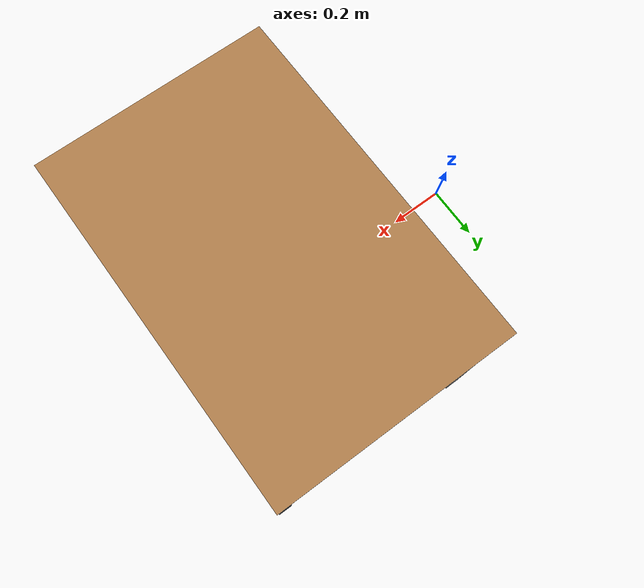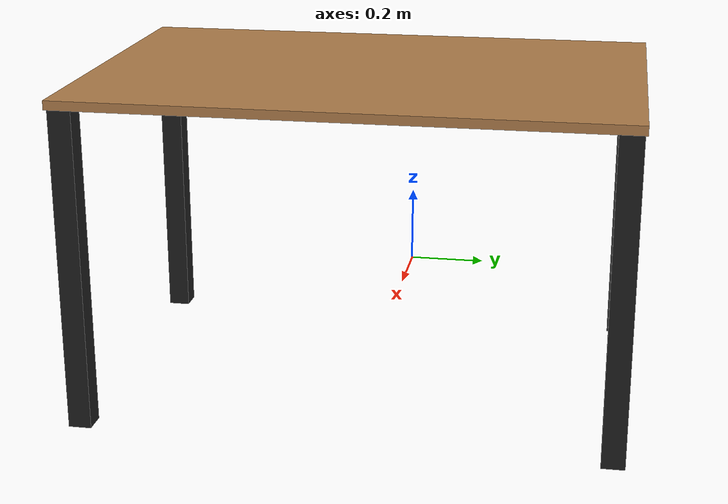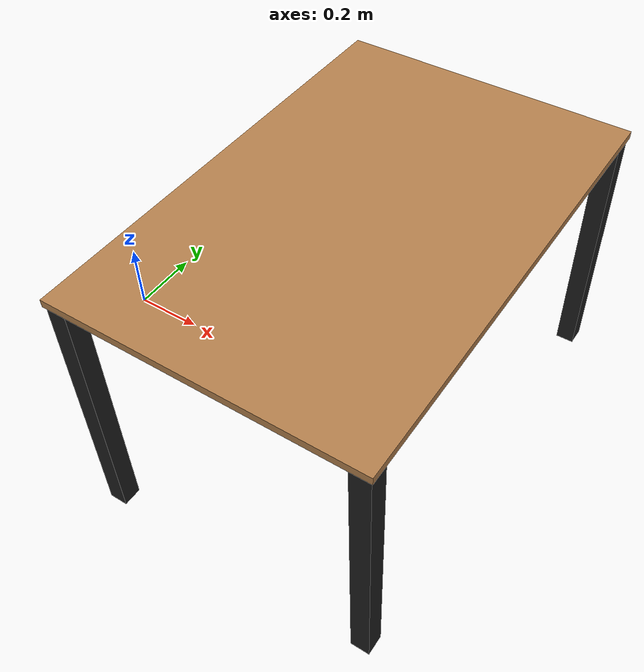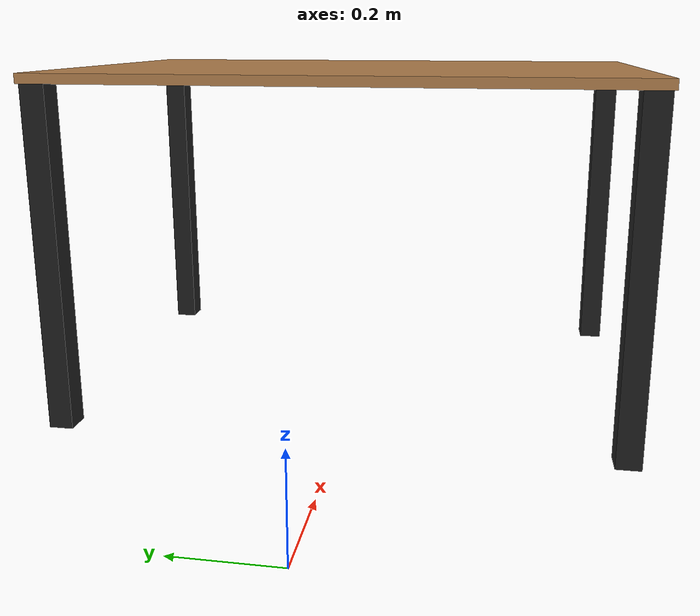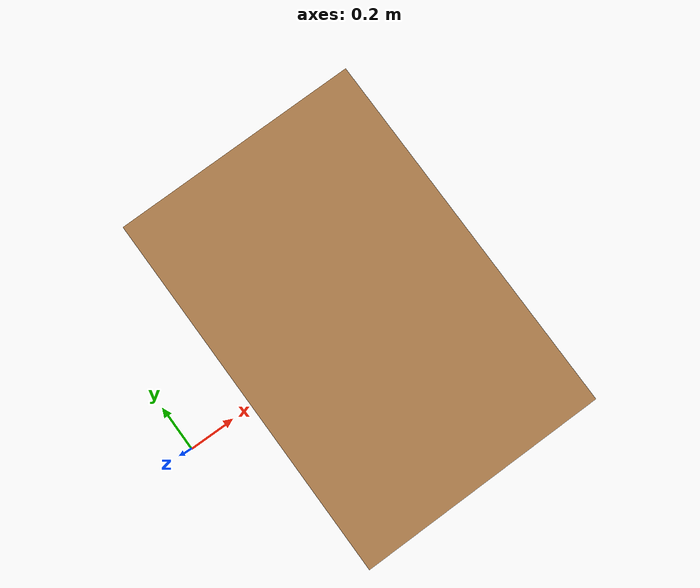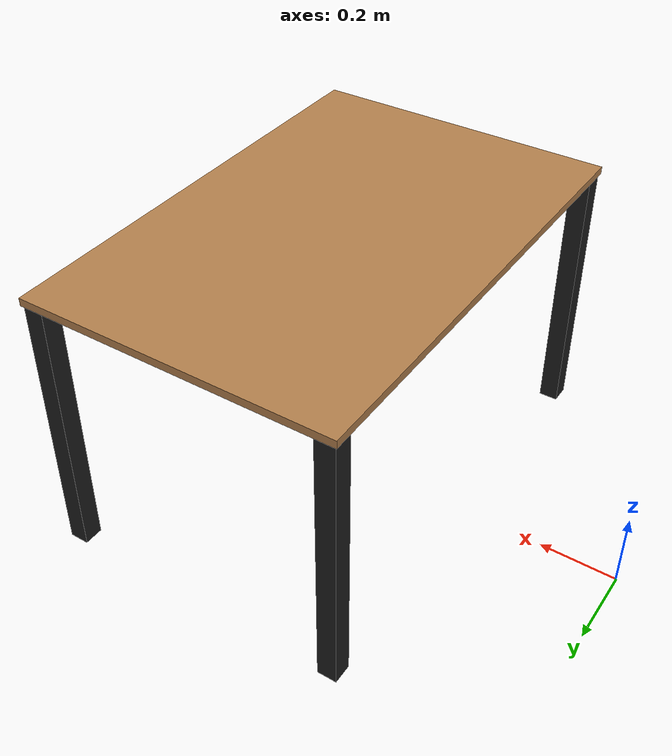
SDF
<?xml version='1.0'?>
  <sdf version='1.6'>
    <model name='desk'>
      <pose>0.796437 0.013077 0.710341 0 -0 0</pose>
      <static>1</static>
      <allow_auto_disable>1</allow_auto_disable>
      <link name='desk_link'>
        <pose>0 0 0 0 -0 0</pose>
        <inertial>
          <pose>0 0 0 0 -0 0</pose>
          <mass>30</mass>
          <inertia>
            <ixx>1</ixx>
            <ixy>0</ixy>
            <ixz>0</ixz>
            <iyy>1</iyy>
            <iyz>0</iyz>
            <izz>1</izz>
          </inertia>
        </inertial>
        <gravity>1</gravity>
        <velocity_decay/>
        <self_collide>1</self_collide>
        <enable_wind>0</enable_wind>
        <kinematic>0</kinematic>
        <visual name='desk_visual'>
          <pose>0 0 0 0 -0 0</pose>
          <geometry>
            <box>
              <size>0.8 1.2 0.02</size>
            </box>
          </geometry>
          <material>
            <script>
              <name>Gazebo/Wood</name>
              <uri>file://media/materials/scripts/gazebo.material</uri>
            </script>
            <shader type='pixel'/>
          </material>
          <transparency>0</transparency>
          <cast_shadows>1</cast_shadows>
        </visual>
        <collision name='desk1_collision'>
          <pose>0 0 -0.003 0 -0 0</pose>
          <geometry>
            <box>
              <size>0.8 1.2 0.014</size>
            </box>
          </geometry>
        </collision>
        <collision name='desk2_collision'>
          <pose>0 0 0.006 0 -0 0</pose>
          <geometry>
            <box>
              <size>0.8 1.2 0.006</size>
            </box>
          </geometry>
        </collision>
      </link>
      <link name='leg_link1'>
        <pose>0.37 -0.57 -0.36 0 -0 0</pose>
        <inertial>
          <pose>0 0 0 0 -0 0</pose>
          <mass>5</mass>
          <inertia>
            <ixx>1</ixx>
            <ixy>0</ixy>
            <ixz>0</ixz>
            <iyy>1</iyy>
            <iyz>0</iyz>
            <izz>1</izz>
          </inertia>
        </inertial>
        <gravity>1</gravity>
        <velocity_decay/>
        <self_collide>1</self_collide>
        <enable_wind>0</enable_wind>
        <kinematic>0</kinematic>
        <visual name='leg_visual1'>
          <pose>0 0 0 0 -0 0</pose>
          <geometry>
            <box>
              <size>0.05 0.05 0.71</size>
            </box>
          </geometry>
          <material>
            <script>
              <name>Gazebo/FlatBlack</name>
              <uri>file://media/materials/scripts/gazebo.material</uri>
            </script>
            <shader type='pixel'/>
          </material>
          <transparency>0</transparency>
          <cast_shadows>1</cast_shadows>
        </visual>
        <collision name='leg_collision1'>
          <pose>0 0 0 0 -0 0</pose>
          <geometry>
            <box>
              <size>0.05 0.05 0.71</size>
            </box>
          </geometry>
        </collision>
      </link>
      <link name='leg_link2'>
        <pose>0.37 0.57 -0.36 0 -0 0</pose>
        <inertial>
          <pose>0 0 0 0 -0 0</pose>
          <mass>5</mass>
          <inertia>
            <ixx>1</ixx>
            <ixy>0</ixy>
            <ixz>0</ixz>
            <iyy>1</iyy>
            <iyz>0</iyz>
            <izz>1</izz>
          </inertia>
        </inertial>
        <gravity>1</gravity>
        <velocity_decay/>
        <self_collide>1</self_collide>
        <enable_wind>0</enable_wind>
        <kinematic>0</kinematic>
        <visual name='leg_visual2'>
          <pose>0 0 0 0 -0 0</pose>
          <geometry>
            <box>
              <size>0.05 0.05 0.71</size>
            </box>
          </geometry>
          <material>
            <script>
              <name>Gazebo/FlatBlack</name>
              <uri>file://media/materials/scripts/gazebo.material</uri>
            </script>
            <shader type='pixel'/>
          </material>
          <transparency>0</transparency>
          <cast_shadows>1</cast_shadows>
        </visual>
        <collision name='leg_collision2'>
          <pose>0 0 0 0 -0 0</pose>
          <geometry>
            <box>
              <size>0.05 0.05 0.71</size>
            </box>
          </geometry>
        </collision>
      </link>
      <link name='leg_link3'>
        <pose>-0.37 0.57 -0.36 0 -0 0</pose>
        <inertial>
          <pose>0 0 0 0 -0 0</pose>
          <mass>5</mass>
          <inertia>
            <ixx>1</ixx>
            <ixy>0</ixy>
            <ixz>0</ixz>
            <iyy>1</iyy>
            <iyz>0</iyz>
            <izz>1</izz>
          </inertia>
        </inertial>
        <gravity>1</gravity>
        <velocity_decay/>
        <self_collide>1</self_collide>
        <enable_wind>0</enable_wind>
        <kinematic>0</kinematic>
        <visual name='leg_visual3'>
          <pose>0 0 0 0 -0 0</pose>
          <geometry>
            <box>
              <size>0.05 0.05 0.71</size>
            </box>
          </geometry>
          <material>
            <script>
              <name>Gazebo/FlatBlack</name>
              <uri>file://media/materials/scripts/gazebo.material</uri>
            </script>
            <shader type='pixel'/>
          </material>
          <transparency>0</transparency>
          <cast_shadows>1</cast_shadows>
        </visual>
        <collision name='leg_collision3'>
          <pose>0 0 0 0 -0 0</pose>
          <geometry>
            <box>
              <size>0.05 0.05 0.71</size>
            </box>
          </geometry>
        </collision>
      </link>
      <link name='leg_link4'>
        <pose>-0.37 -0.57 -0.36 0 -0 0</pose>
        <inertial>
          <pose>0 0 0 0 -0 0</pose>
          <mass>5</mass>
          <inertia>
            <ixx>1</ixx>
            <ixy>0</ixy>
            <ixz>0</ixz>
            <iyy>1</iyy>
            <iyz>0</iyz>
            <izz>1</izz>
          </inertia>
        </inertial>
        <gravity>1</gravity>
        <velocity_decay/>
        <self_collide>1</self_collide>
        <enable_wind>0</enable_wind>
        <kinematic>0</kinematic>
        <visual name='leg_visual4'>
          <pose>0 0 0 0 -0 0</pose>
          <geometry>
            <box>
              <size>0.05 0.05 0.71</size>
            </box>
          </geometry>
          <material>
            <script>
              <name>Gazebo/FlatBlack</name>
              <uri>file://media/materials/scripts/gazebo.material</uri>
            </script>
            <shader type='pixel'/>
          </material>
          <transparency>0</transparency>
          <cast_shadows>1</cast_shadows>
        </visual>
        <collision name='leg_collision4'>
          <pose>0 0 0 0 -0 0</pose>
          <geometry>
            <box>
              <size>0.05 0.05 0.71</size>
            </box>
          </geometry>
        </collision>
      </link>
    </model>
  </sdf>
